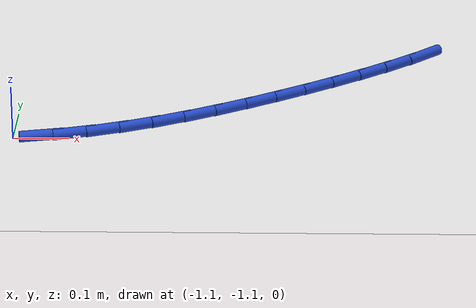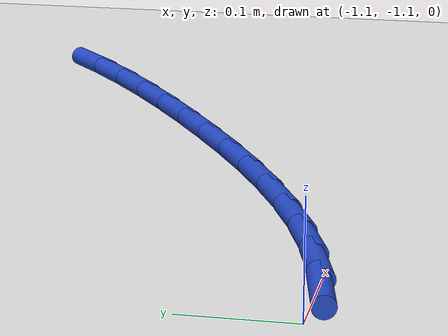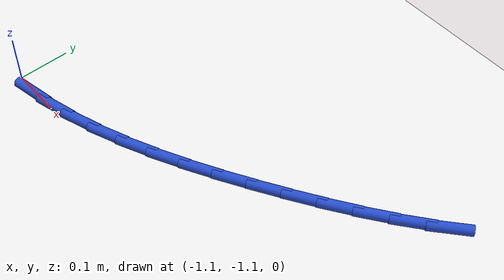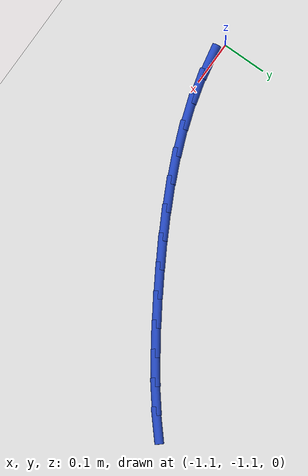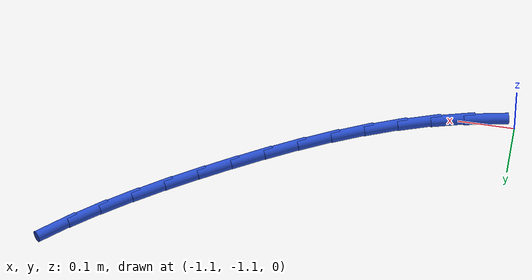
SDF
<sdf version="1.6">
 <world name="default">
  <model name="ground_plane">
   <static>1</static>
   <link name="link">
    <collision name="collision">
     <geometry><plane><normal>0 0 1</normal><size>100 100</size></plane></geometry>
     <surface><friction><ode><mu>100</mu><mu2>50</mu2></ode></friction></surface>
    </collision>
    <visual name="visual">
     <cast_shadows>0</cast_shadows>
     <geometry><plane><normal>0 0 1</normal><size>100 100</size></plane></geometry>
     <material>
      <script><uri>file://media/materials/scripts/gazebo.material</uri><name>Gazebo/WhiteGlow</name></script>
     </material>
    </visual>
   </link>
  </model>
  <model name="line">
   <link name="link_83">
    <pose>-1.0484334857891446 -1.1058459245229693 0.01 0 1.57 0.19734560895745</pose>
    <collision name="collision">
     <geometry><cylinder><radius>0.01</radius><length>0.08</length></cylinder></geometry>
    </collision>
    <visual name="visual">
     <material>
      <script><name>Gazebo/Blue</name><uri>file://media/materials/scripts/gazebo.material</uri></script>
     </material>
     <geometry><cylinder><radius>0.01</radius><length>0.08</length></cylinder></geometry>
    </visual>
   </link>
   <link name="link_84">
    <pose>-0.9902562783833981 -1.0942135052551962 0.01 0 1.57 0.27024969535970716</pose>
    <collision name="collision">
     <geometry><cylinder><radius>0.01</radius><length>0.08</length></cylinder></geometry>
    </collision>
    <visual name="visual">
     <material>
      <script><name>Gazebo/Blue</name><uri>file://media/materials/scripts/gazebo.material</uri></script>
     </material>
     <geometry><cylinder><radius>0.01</radius><length>0.08</length></cylinder></geometry>
    </visual>
   </link>
   <link name="link_85">
    <pose>-0.9325413753462082 -1.078224920239897 0.01 0 1.57 0.33409759110128373</pose>
    <collision name="collision">
     <geometry><cylinder><radius>0.01</radius><length>0.08</length></cylinder></geometry>
    </collision>
    <visual name="visual">
     <material>
      <script><name>Gazebo/Blue</name><uri>file://media/materials/scripts/gazebo.material</uri></script>
     </material>
     <geometry><cylinder><radius>0.01</radius><length>0.08</length></cylinder></geometry>
    </visual>
   </link>
   <link name="link_86">
    <pose>-0.8753352329771044 -1.0583681154966005 0.01 0 1.57 0.389251345978897</pose>
    <collision name="collision">
     <geometry><cylinder><radius>0.01</radius><length>0.08</length></cylinder></geometry>
    </collision>
    <visual name="visual">
     <material>
      <script><name>Gazebo/Blue</name><uri>file://media/materials/scripts/gazebo.material</uri></script>
     </material>
     <geometry><cylinder><radius>0.01</radius><length>0.08</length></cylinder></geometry>
    </visual>
   </link>
   <link name="link_87">
    <pose>-0.8186843075756133 -1.0351310370448332 0.01 0 1.57 0.43623281122906565</pose>
    <collision name="collision">
     <geometry><cylinder><radius>0.01</radius><length>0.08</length></cylinder></geometry>
    </collision>
    <visual name="visual">
     <material>
      <script><name>Gazebo/Blue</name><uri>file://media/materials/scripts/gazebo.material</uri></script>
     </material>
     <geometry><cylinder><radius>0.01</radius><length>0.08</length></cylinder></geometry>
    </visual>
   </link>
   <link name="link_88">
    <pose>-0.7626350554412646 -1.0090016309041239 0.01 0 1.57 0.4756069964424724</pose>
    <collision name="collision">
     <geometry><cylinder><radius>0.01</radius><length>0.08</length></cylinder></geometry>
    </collision>
    <visual name="visual">
     <material>
      <script><name>Gazebo/Blue</name><uri>file://media/materials/scripts/gazebo.material</uri></script>
     </material>
     <geometry><cylinder><radius>0.01</radius><length>0.08</length></cylinder></geometry>
    </visual>
   </link>
   <link name="link_89">
    <pose>-0.7072339328735848 -0.9804678430939996 0.01 0 1.57 0.5079041505389028</pose>
    <collision name="collision">
     <geometry><cylinder><radius>0.01</radius><length>0.08</length></cylinder></geometry>
    </collision>
    <visual name="visual">
     <material>
      <script><name>Gazebo/Blue</name><uri>file://media/materials/scripts/gazebo.material</uri></script>
     </material>
     <geometry><cylinder><radius>0.01</radius><length>0.08</length></cylinder></geometry>
    </visual>
   </link>
   <link name="link_90">
    <pose>-0.652527396172104 -0.9500176196339889 0.01 0 1.57 0.5335709962257883</pose>
    <collision name="collision">
     <geometry><cylinder><radius>0.01</radius><length>0.08</length></cylinder></geometry>
    </collision>
    <visual name="visual">
     <material>
      <script><name>Gazebo/Blue</name><uri>file://media/materials/scripts/gazebo.material</uri></script>
     </material>
     <geometry><cylinder><radius>0.01</radius><length>0.08</length></cylinder></geometry>
    </visual>
   </link>
   <link name="link_91">
    <pose>-0.5985619016363485 -0.9181389065436187 0.01 0 1.57 0.5537039174241438</pose>
    <collision name="collision">
     <geometry><cylinder><radius>0.01</radius><length>0.08</length></cylinder></geometry>
    </collision>
    <visual name="visual">
     <material>
      <script><name>Gazebo/Blue</name><uri>file://media/materials/scripts/gazebo.material</uri></script>
     </material>
     <geometry><cylinder><radius>0.01</radius><length>0.08</length></cylinder></geometry>
    </visual>
   </link>
   <link name="link_92">
    <pose>-0.5453999543463948 -0.8852734970416098 0.01 0 1.57 0.5754257612682906</pose>
    <collision name="collision">
     <geometry><cylinder><radius>0.01</radius><length>0.08</length></cylinder></geometry>
    </collision>
    <visual name="visual">
     <material>
      <script><name>Gazebo/Blue</name><uri>file://media/materials/scripts/gazebo.material</uri></script>
     </material>
     <geometry><cylinder><radius>0.01</radius><length>0.08</length></cylinder></geometry>
    </visual>
   </link>
   <link name="link_93">
    <pose>-0.4932491696688775 -0.8514458787370048 0.01 0 1.57 0.6026110092873819</pose>
    <collision name="collision">
     <geometry><cylinder><radius>0.01</radius><length>0.08</length></cylinder></geometry>
    </collision>
    <visual name="visual">
     <material>
      <script><name>Gazebo/Blue</name><uri>file://media/materials/scripts/gazebo.material</uri></script>
     </material>
     <geometry><cylinder><radius>0.01</radius><length>0.08</length></cylinder></geometry>
    </visual>
   </link>
   <link name="link_94">
    <pose>-0.44239424364921964 -0.8164588719786025 0.01 0 1.57 0.6355357404548145</pose>
    <collision name="collision">
     <geometry><cylinder><radius>0.01</radius><length>0.08</length></cylinder></geometry>
    </collision>
    <visual name="visual">
     <material>
      <script><name>Gazebo/Blue</name><uri>file://media/materials/scripts/gazebo.material</uri></script>
     </material>
     <geometry><cylinder><radius>0.01</radius><length>0.08</length></cylinder></geometry>
    </visual>
   </link>
   <link name="link_95">
    <pose>-0.39312058340447015 -0.7801132522279192 0.01 0 1.57 0.674456204407184</pose>
    <collision name="collision">
     <geometry><cylinder><radius>0.01</radius><length>0.08</length></cylinder></geometry>
    </collision>
    <visual name="visual">
     <material>
      <script><name>Gazebo/Blue</name><uri>file://media/materials/scripts/gazebo.material</uri></script>
     </material>
     <geometry><cylinder><radius>0.01</radius><length>0.08</length></cylinder></geometry>
    </visual>
   </link>
   <link name="link_96">
    <pose>-0.3457135960516806 -0.7422097949464724 0.01 0 1.57 0.7196113538347535</pose>
    <collision name="collision">
     <geometry><cylinder><radius>0.01</radius><length>0.08</length></cylinder></geometry>
    </collision>
    <visual name="visual">
     <material>
      <script><name>Gazebo/Blue</name><uri>file://media/materials/scripts/gazebo.material</uri></script>
     </material>
     <geometry><cylinder><radius>0.01</radius><length>0.08</length></cylinder></geometry>
    </visual>
   </link>
  </model>
 </world>
</sdf>
